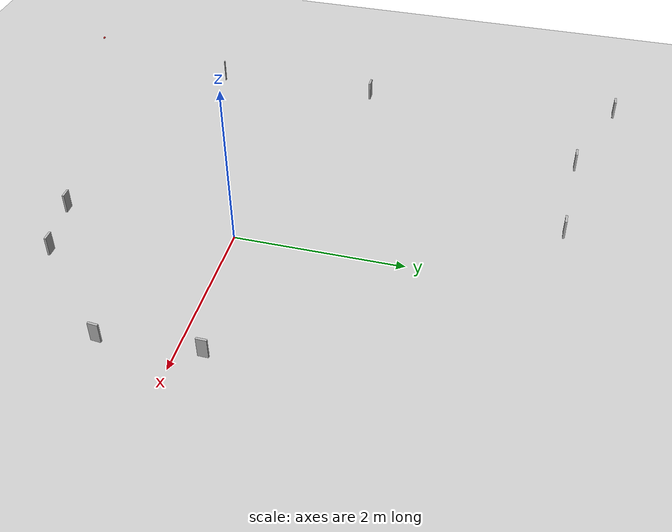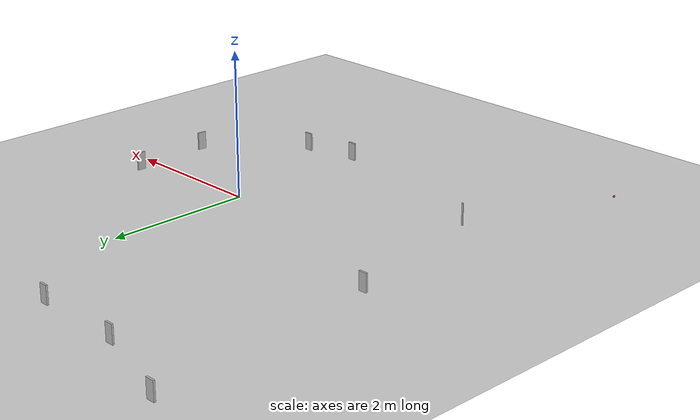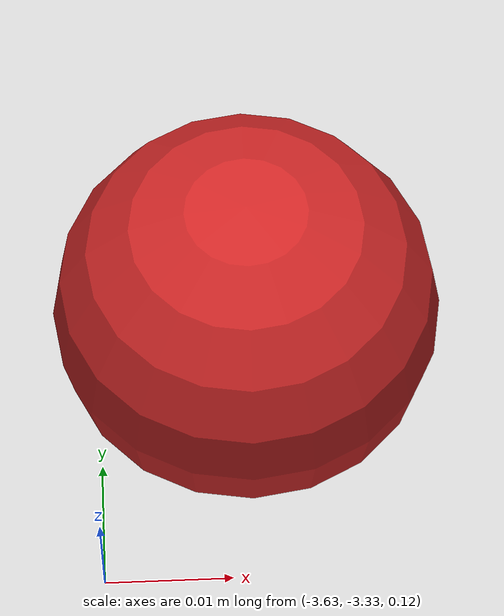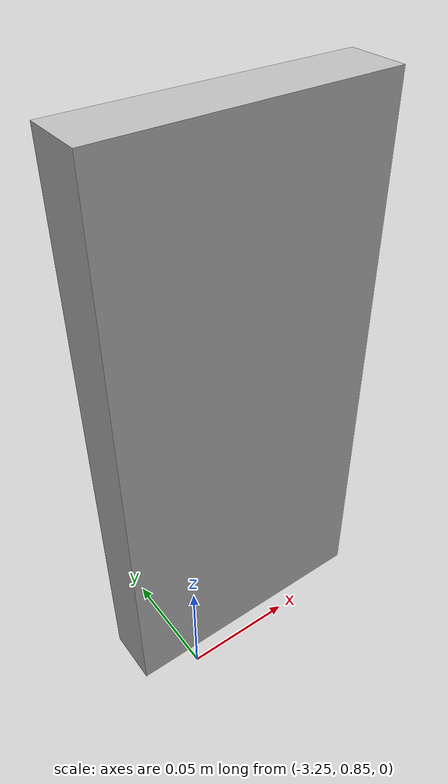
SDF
<sdf version="1.6">
 <world name="default">
  <light name="sun" type="directional">
   <pose>0 0 10 0 -0 0</pose>
   <diffuse>0.8 0.8 0.8 1</diffuse>
   <specular>0.1 0.1 0.1 1</specular>
   <attenuation>
    <range>1000</range>
    <constant>0.9</constant>
    <linear>0.01</linear>
    <quadratic>0.001</quadratic>
   </attenuation>
   <direction>-0.5 0.5 -1</direction>
  </light>
  <model name="ground_plane">
   <static>1</static>
   <link name="link">
    <collision name="collision">
     <geometry><plane><normal>0 0 1</normal><size>100 100</size></plane></geometry>
     <surface><friction><ode><mu>100</mu><mu2>50</mu2></ode></friction></surface>
    </collision>
    <visual name="visual">
     <cast_shadows>0</cast_shadows>
     <geometry><plane><normal>0 0 1</normal><size>100 100</size></plane></geometry>
     <material>
      <script><uri>file://media/materials/scripts/gazebo.material</uri><name>Gazebo/Grey</name></script>
     </material>
    </visual>
   </link>
  </model>
  <gravity>0 0 -9.8</gravity>
  <magnetic_field>6e-06 2.3e-05 -4.2e-05</magnetic_field>
  <atmosphere type="adiabatic"/>
  <physics name="default_physics" default="0" type="ode">
   <max_step_size>0.001</max_step_size>
   <real_time_factor>1</real_time_factor>
   <real_time_update_rate>1000</real_time_update_rate>
  </physics>
  <scene><ambient>0.4 0.4 0.4 1</ambient><background>0.7 0.7 0.7 1</background><shadows>1</shadows></scene>
  <spherical_coordinates>
   <surface_model>EARTH_WGS84</surface_model>
   <latitude_deg>0</latitude_deg>
   <longitude_deg>0</longitude_deg>
   <elevation>0</elevation>
   <heading_deg>0</heading_deg>
  </spherical_coordinates>
  <model name="traffic_parking">
   <pose>-0.003051 -2.07647 0.125 -1e-06 -3e-06 -3e-06</pose>
   <link name="box">
    <collision name="collision"><geometry><box><size>0.12 0.025 0.25</size></box></geometry></collision>
    <visual name="visual">
     <geometry><box><size>0.12 0.025 0.25</size></box></geometry>
     <material>
      <script>
       <uri>model://traffic_parking/materials/scripts</uri>
       <uri>model://traffic_parking/materials/textures</uri>
       <name>traffic_parking</name>
      </script>
     </material>
    </visual>
    <inertial>
     <inertia><ixx>1</ixx><ixy>0</ixy><ixz>0</ixz><iyy>1</iyy><iyz>0</iyz><izz>1</izz></inertia>
     <mass>1</mass>
    </inertial>
   </link>
  </model>
  <model name="traffic_tunnel">
   <pose>0.723438 -1.921 0.125 -2e-06 5e-06 1.3e-05</pose>
   <link name="box">
    <collision name="collision"><geometry><box><size>0.12 0.025 0.25</size></box></geometry></collision>
    <visual name="visual">
     <geometry><box><size>0.12 0.025 0.25</size></box></geometry>
     <material>
      <script>
       <uri>model://traffic_tunnel/materials/scripts</uri>
       <uri>model://traffic_tunnel/materials/textures</uri>
       <name>traffic_tunnel</name>
      </script>
     </material>
    </visual>
    <inertial>
     <inertia><ixx>1</ixx><ixy>0</ixy><ixz>0</ixz><iyy>1</iyy><iyz>0</iyz><izz>1</izz></inertia>
     <mass>1</mass>
    </inertial>
   </link>
  </model>
  <model name="traffic_bar_up">
   <pose>-0.979241 -1.73114 0 0 -0 0</pose>
   <link name="traffic_bar_up">
    <collision name="collision">
     <pose>-1.95 0.6 0.3 0 1.57 0</pose>
     <geometry><box><size>0.3 0.01 0.023</size></box></geometry>
    </collision>
    <visual name="visual">
     <pose>-1.95 0.6 0.3 0 1.57 0</pose>
     <geometry><box><size>0.3 0.01 0.023</size></box></geometry>
     <material>
      <script>
       <uri>model://traffic_bar_up/materials/scripts</uri>
       <uri>model://traffic_bar_up/materials/textures</uri>
       <name>traffic_bar</name>
      </script>
     </material>
    </visual>
   </link>
   <static>1</static>
  </model>
  <model name="traffic_light_red">
   <pose>-1.6683 -2.01154 0 0 0 -1.5708</pose>
   <link name="traffic_light_red">
    <collision name="collision">
     <pose>1.3 -1.95 0.13 0 -0 0</pose>
     <geometry><sphere><radius>0.015</radius></sphere></geometry>
    </collision>
    <visual name="visual">
     <pose>1.3 -1.95 0.13 0 -0 0</pose>
     <geometry><sphere><radius>0.015</radius></sphere></geometry>
     <material>
      <script><name>Gazebo/Red</name><uri>file://media/materials/scripts/gazebo.material</uri></script>
     </material>
    </visual>
   </link>
   <static>1</static>
  </model>
  <model name="traffic_tunnel_0">
   <pose>1.7458 0.286572 0.125001 1e-06 -1.2e-05 -1.58629</pose>
   <link name="box">
    <collision name="collision"><geometry><box><size>0.12 0.025 0.25</size></box></geometry></collision>
    <visual name="visual">
     <geometry><box><size>0.12 0.025 0.25</size></box></geometry>
     <material>
      <script>
       <uri>model://traffic_tunnel/materials/scripts</uri>
       <uri>model://traffic_tunnel/materials/textures</uri>
       <name>traffic_tunnel</name>
      </script>
     </material>
    </visual>
    <inertial>
     <inertia><ixx>1</ixx><ixy>0</ixy><ixz>0</ixz><iyy>1</iyy><iyz>0</iyz><izz>1</izz></inertia>
     <mass>1</mass>
    </inertial>
   </link>
  </model>
  <model name="traffic_tunnel_1">
   <pose>1.81733 -0.843183 0.125001 1e-06 1.1e-05 -1.65846</pose>
   <link name="box">
    <collision name="collision"><geometry><box><size>0.12 0.025 0.25</size></box></geometry></collision>
    <visual name="visual">
     <geometry><box><size>0.12 0.025 0.25</size></box></geometry>
     <material>
      <script>
       <uri>model://traffic_tunnel/materials/scripts</uri>
       <uri>model://traffic_tunnel/materials/textures</uri>
       <name>traffic_tunnel</name>
      </script>
     </material>
    </visual>
    <inertial>
     <inertia><ixx>1</ixx><ixy>0</ixy><ixz>0</ixz><iyy>1</iyy><iyz>0</iyz><izz>1</izz></inertia>
     <mass>1</mass>
    </inertial>
   </link>
  </model>
  <model name="traffic_tunnel_2">
   <pose>-3.2142 0.869311 0.124991 -1e-06 5e-06 5e-06</pose>
   <link name="box">
    <collision name="collision"><geometry><box><size>0.12 0.025 0.25</size></box></geometry></collision>
    <visual name="visual">
     <geometry><box><size>0.12 0.025 0.25</size></box></geometry>
     <material>
      <script>
       <uri>model://traffic_tunnel/materials/scripts</uri>
       <uri>model://traffic_tunnel/materials/textures</uri>
       <name>traffic_tunnel</name>
      </script>
     </material>
    </visual>
    <inertial>
     <inertia><ixx>1</ixx><ixy>0</ixy><ixz>0</ixz><iyy>1</iyy><iyz>0</iyz><izz>1</izz></inertia>
     <mass>1</mass>
    </inertial>
   </link>
  </model>
  <model name="traffic_tunnel_3">
   <pose>-3.5572 4.14859 0.125001 1e-06 -1.7e-05 3e-06</pose>
   <link name="box">
    <collision name="collision"><geometry><box><size>0.12 0.025 0.25</size></box></geometry></collision>
    <visual name="visual">
     <geometry><box><size>0.12 0.025 0.25</size></box></geometry>
     <material>
      <script>
       <uri>model://traffic_tunnel/materials/scripts</uri>
       <uri>model://traffic_tunnel/materials/textures</uri>
       <name>traffic_tunnel</name>
      </script>
     </material>
    </visual>
    <inertial>
     <inertia><ixx>1</ixx><ixy>0</ixy><ixz>0</ixz><iyy>1</iyy><iyz>0</iyz><izz>1</izz></inertia>
     <mass>1</mass>
    </inertial>
   </link>
  </model>
  <model name="traffic_tunnel_4">
   <pose>-2.26356 3.71238 0.125001 -2e-06 -2.3e-05 2e-06</pose>
   <link name="box">
    <collision name="collision"><geometry><box><size>0.12 0.025 0.25</size></box></geometry></collision>
    <visual name="visual">
     <geometry><box><size>0.12 0.025 0.25</size></box></geometry>
     <material>
      <script>
       <uri>model://traffic_tunnel/materials/scripts</uri>
       <uri>model://traffic_tunnel/materials/textures</uri>
       <name>traffic_tunnel</name>
      </script>
     </material>
    </visual>
    <inertial>
     <inertia><ixx>1</ixx><ixy>0</ixy><ixz>0</ixz><iyy>1</iyy><iyz>0</iyz><izz>1</izz></inertia>
     <mass>1</mass>
    </inertial>
   </link>
  </model>
  <model name="traffic_tunnel_5">
   <pose>-0.956895 3.66473 0.125 -3e-06 -1e-06 2e-06</pose>
   <link name="box">
    <collision name="collision"><geometry><box><size>0.12 0.025 0.25</size></box></geometry></collision>
    <visual name="visual">
     <geometry><box><size>0.12 0.025 0.25</size></box></geometry>
     <material>
      <script>
       <uri>model://traffic_tunnel/materials/scripts</uri>
       <uri>model://traffic_tunnel/materials/textures</uri>
       <name>traffic_tunnel</name>
      </script>
     </material>
    </visual>
    <inertial>
     <inertia><ixx>1</ixx><ixy>0</ixy><ixz>0</ixz><iyy>1</iyy><iyz>0</iyz><izz>1</izz></inertia>
     <mass>1</mass>
    </inertial>
   </link>
  </model>
 </world>
</sdf>
